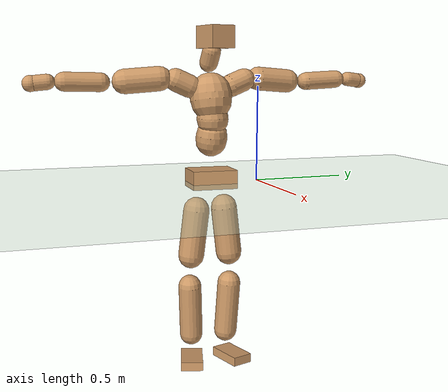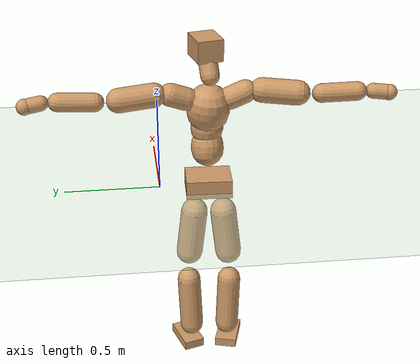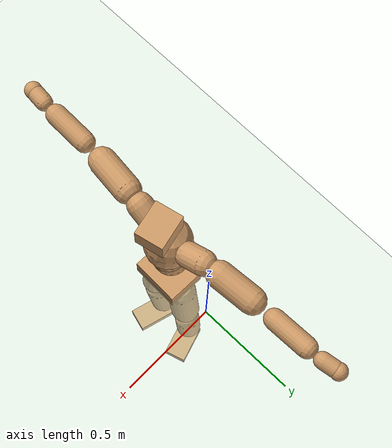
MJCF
<mujoco model="humanoid">
  <compiler coordinate="local" angle="radian"/>
  <default>
    <joint damping="0.0" armature="0.01" stiffness="0.0" limited="true"/>
    <geom conaffinity="1" condim="3" contype="7" margin="0.001" rgba="0.8 0.6 .4 1"/>
  </default>
  <asset>
    <texture type="skybox" builtin="gradient" rgb1=".4 .5 .6" rgb2="0 0 0" width="100" height="100"/>
    <texture builtin="flat" height="1278" mark="cross" markrgb="1 1 1" name="texgeom" random="0.01" rgb1="0.8 0.6 0.4" rgb2="0.8 0.6 0.4" type="cube" width="127"/>
    <texture builtin="checker" height="100" name="texplane" rgb1="0 0 0" rgb2="0.8 0.8 0.8" type="2d" width="100"/>
    <material name="MatPlane" reflectance="0.5" shininess="1" specular="1" texrepeat="60 60" texture="texplane"/>
    <material name="geom" texture="texgeom" texuniform="true"/>
  </asset>
  <worldbody>
    <light cutoff="100" diffuse="1 1 1" dir="-0 0 -1.3" directional="true" exponent="1" pos="0 0 1.3" specular=".1 .1 .1"/>
    <geom conaffinity="1" condim="3" name="floor" pos="0 0 0" rgba="0.8 0.9 0.8 1" size="100 100 .2" type="plane" material="MatPlane"/>
    <body name="Pelvis" pos="-0.0003 -0.2573 0.0283">
      <freejoint name="Pelvis"/>
      <geom type="box" contype="1" conaffinity="1" density="500" pos="-0.0137 0.0004 -0.0091" size="0.0917 0.1194 0.0488" quat="0.9999 0.0000 0.0000 -0.0162" name="Pelvis"/>
      <body name="L_Hip" pos="-0.0228 0.0673 -0.0892">
        <joint name="L_Hip_x" type="hinge" pos="0 0 0" axis="1 0 0" stiffness="800" damping="80" armature="0.02" range="-180.0000 180.0000"/>
        <joint name="L_Hip_y" type="hinge" pos="0 0 0" axis="0 1 0" stiffness="800" damping="80" armature="0.02" range="-180.0000 180.0000"/>
        <joint name="L_Hip_z" type="hinge" pos="0 0 0" axis="0 0 1" stiffness="800" damping="80" armature="0.02" range="-180.0000 180.0000"/>
        <geom type="capsule" contype="1" conaffinity="1" density="500" fromto="0.0007 0.0094 -0.0834 0.0028 0.0376 -0.3334" size="0.0701" name="L_Hip"/>
        <body name="L_Knee" pos="0.0034 0.047 -0.4168">
          <joint name="L_Knee_x" type="hinge" pos="0 0 0" axis="1 0 0" stiffness="800" damping="80" armature="0.02" range="-180.0000 180.0000"/>
          <joint name="L_Knee_y" type="hinge" pos="0 0 0" axis="0 1 0" stiffness="800" damping="80" armature="0.02" range="-180.0000 180.0000"/>
          <joint name="L_Knee_z" type="hinge" pos="0 0 0" axis="0 0 1" stiffness="800" damping="80" armature="0.02" range="-180.0000 180.0000"/>
          <geom type="capsule" contype="1" conaffinity="1" density="500" fromto="-0.0085 -0.0036 -0.0947 -0.0338 -0.0143 -0.3786" size="0.0627" name="L_Knee"/>
          <body name="L_Ankle" pos="-0.0423 -0.0179 -0.4733">
            <joint name="L_Ankle_x" type="hinge" pos="0 0 0" axis="1 0 0" stiffness="800" damping="80" armature="0.02" range="-180.0000 180.0000"/>
            <joint name="L_Ankle_y" type="hinge" pos="0 0 0" axis="0 1 0" stiffness="800" damping="80" armature="0.02" range="-180.0000 180.0000"/>
            <joint name="L_Ankle_z" type="hinge" pos="0 0 0" axis="0 0 1" stiffness="800" damping="80" armature="0.02" range="-180.0000 180.0000"/>
            <geom type="box" contype="1" conaffinity="1" density="500" pos="0.0682 0.0211 -0.0335" size="0.1001 0.0562 0.0242" quat="0.9887 0.0000 0.0000 0.1498" name="L_Ankle"/>
            <body name="L_Toe" pos="0.1364 0.0423 -0.0669">
              <joint name="L_Toe_x" type="hinge" pos="0 0 0" axis="1 0 0" stiffness="500" damping="50" armature="0.02" range="-180.0000 180.0000"/>
              <joint name="L_Toe_y" type="hinge" pos="0 0 0" axis="0 1 0" stiffness="500" damping="50" armature="0.02" range="-180.0000 180.0000"/>
              <joint name="L_Toe_z" type="hinge" pos="0 0 0" axis="0 0 1" stiffness="500" damping="50" armature="0.02" range="-180.0000 180.0000"/>
              <geom type="box" contype="1" conaffinity="1" density="500" pos="0.0000 0.0000 0.0328" size="0.0012 0.0028 0.0012" quat="0.9880 0.0000 0.0000 0.1543" name="L_Toe"/>
            </body>
          </body>
        </body>
      </body>
      <body name="R_Hip" pos="-0.0199 -0.0692 -0.0966">
        <joint name="R_Hip_x" type="hinge" pos="0 0 0" axis="1 0 0" stiffness="800" damping="80" armature="0.02" range="-180.0000 180.0000"/>
        <joint name="R_Hip_y" type="hinge" pos="0 0 0" axis="0 1 0" stiffness="800" damping="80" armature="0.02" range="-180.0000 180.0000"/>
        <joint name="R_Hip_z" type="hinge" pos="0 0 0" axis="0 0 1" stiffness="800" damping="80" armature="0.02" range="-180.0000 180.0000"/>
        <geom type="capsule" contype="1" conaffinity="1" density="500" fromto="-0.0020 -0.0095 -0.0833 -0.0080 -0.0381 -0.3330" size="0.0695" name="R_Hip"/>
        <body name="R_Knee" pos="-0.01 -0.0476 -0.4163">
          <joint name="R_Knee_x" type="hinge" pos="0 0 0" axis="1 0 0" stiffness="800" damping="80" armature="0.02" range="-180.0000 180.0000"/>
          <joint name="R_Knee_y" type="hinge" pos="0 0 0" axis="0 1 0" stiffness="800" damping="80" armature="0.02" range="-180.0000 180.0000"/>
          <joint name="R_Knee_z" type="hinge" pos="0 0 0" axis="0 0 1" stiffness="800" damping="80" armature="0.02" range="-180.0000 180.0000"/>
          <geom type="capsule" contype="1" conaffinity="1" density="500" fromto="-0.0078 0.0045 -0.0933 -0.0311 0.0180 -0.3733" size="0.0625" name="R_Knee"/>
          <body name="R_Ankle" pos="-0.0389 0.0225 -0.4667">
            <joint name="R_Ankle_x" type="hinge" pos="0 0 0" axis="1 0 0" stiffness="800" damping="80" armature="0.02" range="-180.0000 180.0000"/>
            <joint name="R_Ankle_y" type="hinge" pos="0 0 0" axis="0 1 0" stiffness="800" damping="80" armature="0.02" range="-180.0000 180.0000"/>
            <joint name="R_Ankle_z" type="hinge" pos="0 0 0" axis="0 0 1" stiffness="800" damping="80" armature="0.02" range="-180.0000 180.0000"/>
            <geom type="box" contype="1" conaffinity="1" density="500" pos="0.0731 -0.0207 -0.0345" size="0.1012 0.0585 0.024" quat="0.9905 0.0000 0.0000 -0.1373" name="R_Ankle"/>
            <body name="R_Toe" pos="0.1463 -0.0413 -0.069">
              <joint name="R_Toe_x" type="hinge" pos="0 0 0" axis="1 0 0" stiffness="500" damping="50" armature="0.02" range="-180.0000 180.0000"/>
              <joint name="R_Toe_y" type="hinge" pos="0 0 0" axis="0 1 0" stiffness="500" damping="50" armature="0.02" range="-180.0000 180.0000"/>
              <joint name="R_Toe_z" type="hinge" pos="0 0 0" axis="0 0 1" stiffness="500" damping="50" armature="0.02" range="-180.0000 180.0000"/>
              <geom type="box" contype="1" conaffinity="1" density="500" pos="0.0000 0.0000 0.0349" size="0.0012 0.0028 0.0012" quat="0.9916 0.0000 0.0000 -0.1293" name="R_Toe"/>
            </body>
          </body>
        </body>
      </body>
      <body name="Torso" pos="-0.0396 0.0046 0.1314">
        <joint name="Torso_x" type="hinge" pos="0 0 0" axis="1 0 0" stiffness="1000" damping="100" armature="0.02" range="-180.0000 180.0000"/>
        <joint name="Torso_y" type="hinge" pos="0 0 0" axis="0 1 0" stiffness="1000" damping="100" armature="0.02" range="-180.0000 180.0000"/>
        <joint name="Torso_z" type="hinge" pos="0 0 0" axis="0 0 1" stiffness="1000" damping="100" armature="0.02" range="-180.0000 180.0000"/>
        <geom type="capsule" contype="1" conaffinity="1" density="500" fromto="0.0182 0.0022 0.0873 0.0122 0.0015 0.0582" size="0.0831" name="Torso"/>
        <body name="Spine" pos="0.0304 0.0037 0.1455">
          <joint name="Spine_x" type="hinge" pos="0 0 0" axis="1 0 0" stiffness="1000" damping="100" armature="0.02" range="-180.0000 180.0000"/>
          <joint name="Spine_y" type="hinge" pos="0 0 0" axis="0 1 0" stiffness="1000" damping="100" armature="0.02" range="-180.0000 180.0000"/>
          <joint name="Spine_z" type="hinge" pos="0 0 0" axis="0 0 1" stiffness="1000" damping="100" armature="0.02" range="-180.0000 180.0000"/>
          <geom type="capsule" contype="1" conaffinity="1" density="500" fromto="0.0028 -0.0020 0.0364 0.0019 -0.0014 0.0243" size="0.0834" name="Spine"/>
          <body name="Chest" pos="0.0046 -0.0034 0.0607">
            <joint name="Chest_x" type="hinge" pos="0 0 0" axis="1 0 0" stiffness="1000" damping="100" armature="0.02" range="-180.0000 180.0000"/>
            <joint name="Chest_y" type="hinge" pos="0 0 0" axis="0 1 0" stiffness="1000" damping="100" armature="0.02" range="-180.0000 180.0000"/>
            <joint name="Chest_z" type="hinge" pos="0 0 0" axis="0 0 1" stiffness="1000" damping="100" armature="0.02" range="-180.0000 180.0000"/>
            <geom type="capsule" contype="1" conaffinity="1" density="500" fromto="-0.0147 -0.0050 0.0980 -0.0098 -0.0033 0.0653" size="0.1104" name="Chest"/>
            <body name="Neck" pos="-0.0355 -0.0143 0.2378">
              <joint name="Neck_x" type="hinge" pos="0 0 0" axis="1 0 0" stiffness="500" damping="50" armature="0.02" range="-180.0000 180.0000"/>
              <joint name="Neck_y" type="hinge" pos="0 0 0" axis="0 1 0" stiffness="500" damping="50" armature="0.02" range="-180.0000 180.0000"/>
              <joint name="Neck_z" type="hinge" pos="0 0 0" axis="0 0 1" stiffness="500" damping="50" armature="0.02" range="-180.0000 180.0000"/>
              <geom type="capsule" contype="1" conaffinity="1" density="500" fromto="0.0103 0.0020 0.0196 0.0413 0.0081 0.0783" size="0.0484" name="Neck"/>
              <body name="Head" pos="0.0517 0.0102 0.0978">
                <joint name="Head_x" type="hinge" pos="0 0 0" axis="1 0 0" stiffness="500" damping="50" armature="0.02" range="-180.0000 180.0000"/>
                <joint name="Head_y" type="hinge" pos="0 0 0" axis="0 1 0" stiffness="500" damping="50" armature="0.02" range="-180.0000 180.0000"/>
                <joint name="Head_z" type="hinge" pos="0 0 0" axis="0 0 1" stiffness="500" damping="50" armature="0.02" range="-180.0000 180.0000"/>
                <geom type="box" contype="1" conaffinity="1" density="500" pos="0.0268 0.0061 0.0499" size="0.0817 0.0666 0.0567" quat="0.9938 0.0000 0.0000 0.1111" name="Head"/>
              </body>
            </body>
            <body name="L_Thorax" pos="-0.0157 0.0793 0.1272">
              <joint name="L_Thorax_x" type="hinge" pos="0 0 0" axis="1 0 0" stiffness="500" damping="50" armature="0.02" range="-180.0000 180.0000"/>
              <joint name="L_Thorax_y" type="hinge" pos="0 0 0" axis="0 1 0" stiffness="500" damping="50" armature="0.02" range="-180.0000 180.0000"/>
              <joint name="L_Thorax_z" type="hinge" pos="0 0 0" axis="0 0 1" stiffness="500" damping="50" armature="0.02" range="-180.0000 180.0000"/>
              <geom type="capsule" contype="1" conaffinity="1" density="500" fromto="-0.0039 0.0269 0.0105 -0.0157 0.1075 0.0420" size="0.0593" name="L_Thorax"/>
              <body name="L_Shoulder" pos="-0.0197 0.1344 0.0525">
                <joint name="L_Shoulder_x" type="hinge" pos="0 0 0" axis="1 0 0" stiffness="500" damping="50" armature="0.02" range="-720.0000 720.0000"/>
                <joint name="L_Shoulder_y" type="hinge" pos="0 0 0" axis="0 1 0" stiffness="500" damping="50" armature="0.02" range="-720.0000 720.0000"/>
                <joint name="L_Shoulder_z" type="hinge" pos="0 0 0" axis="0 0 1" stiffness="500" damping="50" armature="0.02" range="-720.0000 720.0000"/>
                <geom type="capsule" contype="1" conaffinity="1" density="500" fromto="-0.0053 0.0579 -0.0046 -0.0214 0.2316 -0.0183" size="0.0625" name="L_Shoulder"/>
                <body name="L_Elbow" pos="-0.0267 0.2896 -0.0229">
                  <joint name="L_Elbow_x" type="hinge" pos="0 0 0" axis="1 0 0" stiffness="500" damping="50" armature="0.02" range="-720.0000 720.0000"/>
                  <joint name="L_Elbow_y" type="hinge" pos="0 0 0" axis="0 1 0" stiffness="500" damping="50" armature="0.02" range="-720.0000 720.0000"/>
                  <joint name="L_Elbow_z" type="hinge" pos="0 0 0" axis="0 0 1" stiffness="500" damping="50" armature="0.02" range="-720.0000 720.0000"/>
                  <geom type="capsule" contype="1" conaffinity="1" density="500" fromto="-0.0009 0.0601 0.0032 -0.0037 0.2405 0.0129" size="0.0475" name="L_Elbow"/>
                  <body name="L_Wrist" pos="-0.0046 0.3007 0.0162">
                    <joint name="L_Wrist_x" type="hinge" pos="0 0 0" axis="1 0 0" stiffness="300" damping="30" armature="0.02" range="-180.0000 180.0000"/>
                    <joint name="L_Wrist_y" type="hinge" pos="0 0 0" axis="0 1 0" stiffness="300" damping="30" armature="0.02" range="-180.0000 180.0000"/>
                    <joint name="L_Wrist_z" type="hinge" pos="0 0 0" axis="0 0 1" stiffness="300" damping="30" armature="0.02" range="-180.0000 180.0000"/>
                    <geom type="capsule" contype="1" conaffinity="1" density="500" fromto="-0.0036 0.0198 -0.0024 -0.0145 0.0791 -0.0097" size="0.0386" name="L_Wrist"/>
                    <body name="L_Hand" pos="-0.0181 0.0989 -0.0122">
                      <joint name="L_Hand_x" type="hinge" pos="0 0 0" axis="1 0 0" stiffness="300" damping="30" armature="0.02" range="-180.0000 180.0000"/>
                      <joint name="L_Hand_y" type="hinge" pos="0 0 0" axis="0 1 0" stiffness="300" damping="30" armature="0.02" range="-180.0000 180.0000"/>
                      <joint name="L_Hand_z" type="hinge" pos="0 0 0" axis="0 0 1" stiffness="300" damping="30" armature="0.02" range="-180.0000 180.0000"/>
                      <geom type="sphere" contype="1" conaffinity="1" density="500" size="0.0405" pos="0.0000 0.0000 0.0000" name="L_Hand"/>
                    </body>
                  </body>
                </body>
              </body>
            </body>
            <body name="R_Thorax" pos="-0.0222 -0.0898 0.125">
              <joint name="R_Thorax_x" type="hinge" pos="0 0 0" axis="1 0 0" stiffness="500" damping="50" armature="0.02" range="-180.0000 180.0000"/>
              <joint name="R_Thorax_y" type="hinge" pos="0 0 0" axis="0 1 0" stiffness="500" damping="50" armature="0.02" range="-180.0000 180.0000"/>
              <joint name="R_Thorax_z" type="hinge" pos="0 0 0" axis="0 0 1" stiffness="500" damping="50" armature="0.02" range="-180.0000 180.0000"/>
              <geom type="capsule" contype="1" conaffinity="1" density="500" fromto="-0.0015 -0.0250 0.0113 -0.0062 -0.1001 0.0451" size="0.0595" name="R_Thorax"/>
              <body name="R_Shoulder" pos="-0.0077 -0.1251 0.0564">
                <joint name="R_Shoulder_x" type="hinge" pos="0 0 0" axis="1 0 0" stiffness="500" damping="50" armature="0.02" range="-720.0000 720.0000"/>
                <joint name="R_Shoulder_y" type="hinge" pos="0 0 0" axis="0 1 0" stiffness="500" damping="50" armature="0.02" range="-720.0000 720.0000"/>
                <joint name="R_Shoulder_z" type="hinge" pos="0 0 0" axis="0 0 1" stiffness="500" damping="50" armature="0.02" range="-720.0000 720.0000"/>
                <geom type="capsule" contype="1" conaffinity="1" density="500" fromto="-0.0077 -0.0593 -0.0047 -0.0307 -0.2370 -0.0187" size="0.0639" name="R_Shoulder"/>
                <body name="R_Elbow" pos="-0.0384 -0.2963 -0.0234">
                  <joint name="R_Elbow_x" type="hinge" pos="0 0 0" axis="1 0 0" stiffness="500" damping="50" armature="0.02" range="-720.0000 720.0000"/>
                  <joint name="R_Elbow_y" type="hinge" pos="0 0 0" axis="0 1 0" stiffness="500" damping="50" armature="0.02" range="-720.0000 720.0000"/>
                  <joint name="R_Elbow_z" type="hinge" pos="0 0 0" axis="0 0 1" stiffness="500" damping="50" armature="0.02" range="-720.0000 720.0000"/>
                  <geom type="capsule" contype="1" conaffinity="1" density="500" fromto="-0.0010 -0.0609 0.0013 -0.0041 -0.2435 0.0052" size="0.0484" name="R_Elbow"/>
                  <body name="R_Wrist" pos="-0.0051 -0.3044 0.0065">
                    <joint name="R_Wrist_x" type="hinge" pos="0 0 0" axis="1 0 0" stiffness="300" damping="30" armature="0.02" range="-180.0000 180.0000"/>
                    <joint name="R_Wrist_y" type="hinge" pos="0 0 0" axis="0 1 0" stiffness="300" damping="30" armature="0.02" range="-180.0000 180.0000"/>
                    <joint name="R_Wrist_z" type="hinge" pos="0 0 0" axis="0 0 1" stiffness="300" damping="30" armature="0.02" range="-180.0000 180.0000"/>
                    <geom type="capsule" contype="1" conaffinity="1" density="500" fromto="-0.0023 -0.0203 -0.0020 -0.0092 -0.0810 -0.0080" size="0.0395" name="R_Wrist"/>
                    <body name="R_Hand" pos="-0.0116 -0.1013 -0.01">
                      <joint name="R_Hand_x" type="hinge" pos="0 0 0" axis="1 0 0" stiffness="300" damping="30" armature="0.02" range="-180.0000 180.0000"/>
                      <joint name="R_Hand_y" type="hinge" pos="0 0 0" axis="0 1 0" stiffness="300" damping="30" armature="0.02" range="-180.0000 180.0000"/>
                      <joint name="R_Hand_z" type="hinge" pos="0 0 0" axis="0 0 1" stiffness="300" damping="30" armature="0.02" range="-180.0000 180.0000"/>
                      <geom type="sphere" contype="1" conaffinity="1" density="500" size="0.0411" pos="0.0000 0.0000 0.0000" name="R_Hand"/>
                    </body>
                  </body>
                </body>
              </body>
            </body>
          </body>
        </body>
      </body>
    </body>
  </worldbody>
  <actuator>
    <motor name="L_Hip_x" joint="L_Hip_x" gear="500"/>
    <motor name="L_Hip_y" joint="L_Hip_y" gear="500"/>
    <motor name="L_Hip_z" joint="L_Hip_z" gear="500"/>
    <motor name="L_Knee_x" joint="L_Knee_x" gear="500"/>
    <motor name="L_Knee_y" joint="L_Knee_y" gear="500"/>
    <motor name="L_Knee_z" joint="L_Knee_z" gear="500"/>
    <motor name="L_Ankle_x" joint="L_Ankle_x" gear="500"/>
    <motor name="L_Ankle_y" joint="L_Ankle_y" gear="500"/>
    <motor name="L_Ankle_z" joint="L_Ankle_z" gear="500"/>
    <motor name="L_Toe_x" joint="L_Toe_x" gear="500"/>
    <motor name="L_Toe_y" joint="L_Toe_y" gear="500"/>
    <motor name="L_Toe_z" joint="L_Toe_z" gear="500"/>
    <motor name="R_Hip_x" joint="R_Hip_x" gear="500"/>
    <motor name="R_Hip_y" joint="R_Hip_y" gear="500"/>
    <motor name="R_Hip_z" joint="R_Hip_z" gear="500"/>
    <motor name="R_Knee_x" joint="R_Knee_x" gear="500"/>
    <motor name="R_Knee_y" joint="R_Knee_y" gear="500"/>
    <motor name="R_Knee_z" joint="R_Knee_z" gear="500"/>
    <motor name="R_Ankle_x" joint="R_Ankle_x" gear="500"/>
    <motor name="R_Ankle_y" joint="R_Ankle_y" gear="500"/>
    <motor name="R_Ankle_z" joint="R_Ankle_z" gear="500"/>
    <motor name="R_Toe_x" joint="R_Toe_x" gear="500"/>
    <motor name="R_Toe_y" joint="R_Toe_y" gear="500"/>
    <motor name="R_Toe_z" joint="R_Toe_z" gear="500"/>
    <motor name="Torso_x" joint="Torso_x" gear="500"/>
    <motor name="Torso_y" joint="Torso_y" gear="500"/>
    <motor name="Torso_z" joint="Torso_z" gear="500"/>
    <motor name="Spine_x" joint="Spine_x" gear="500"/>
    <motor name="Spine_y" joint="Spine_y" gear="500"/>
    <motor name="Spine_z" joint="Spine_z" gear="500"/>
    <motor name="Chest_x" joint="Chest_x" gear="500"/>
    <motor name="Chest_y" joint="Chest_y" gear="500"/>
    <motor name="Chest_z" joint="Chest_z" gear="500"/>
    <motor name="Neck_x" joint="Neck_x" gear="500"/>
    <motor name="Neck_y" joint="Neck_y" gear="500"/>
    <motor name="Neck_z" joint="Neck_z" gear="500"/>
    <motor name="Head_x" joint="Head_x" gear="500"/>
    <motor name="Head_y" joint="Head_y" gear="500"/>
    <motor name="Head_z" joint="Head_z" gear="500"/>
    <motor name="L_Thorax_x" joint="L_Thorax_x" gear="500"/>
    <motor name="L_Thorax_y" joint="L_Thorax_y" gear="500"/>
    <motor name="L_Thorax_z" joint="L_Thorax_z" gear="500"/>
    <motor name="L_Shoulder_x" joint="L_Shoulder_x" gear="500"/>
    <motor name="L_Shoulder_y" joint="L_Shoulder_y" gear="500"/>
    <motor name="L_Shoulder_z" joint="L_Shoulder_z" gear="500"/>
    <motor name="L_Elbow_x" joint="L_Elbow_x" gear="500"/>
    <motor name="L_Elbow_y" joint="L_Elbow_y" gear="500"/>
    <motor name="L_Elbow_z" joint="L_Elbow_z" gear="500"/>
    <motor name="L_Wrist_x" joint="L_Wrist_x" gear="500"/>
    <motor name="L_Wrist_y" joint="L_Wrist_y" gear="500"/>
    <motor name="L_Wrist_z" joint="L_Wrist_z" gear="500"/>
    <motor name="L_Hand_x" joint="L_Hand_x" gear="500"/>
    <motor name="L_Hand_y" joint="L_Hand_y" gear="500"/>
    <motor name="L_Hand_z" joint="L_Hand_z" gear="500"/>
    <motor name="R_Thorax_x" joint="R_Thorax_x" gear="500"/>
    <motor name="R_Thorax_y" joint="R_Thorax_y" gear="500"/>
    <motor name="R_Thorax_z" joint="R_Thorax_z" gear="500"/>
    <motor name="R_Shoulder_x" joint="R_Shoulder_x" gear="500"/>
    <motor name="R_Shoulder_y" joint="R_Shoulder_y" gear="500"/>
    <motor name="R_Shoulder_z" joint="R_Shoulder_z" gear="500"/>
    <motor name="R_Elbow_x" joint="R_Elbow_x" gear="500"/>
    <motor name="R_Elbow_y" joint="R_Elbow_y" gear="500"/>
    <motor name="R_Elbow_z" joint="R_Elbow_z" gear="500"/>
    <motor name="R_Wrist_x" joint="R_Wrist_x" gear="500"/>
    <motor name="R_Wrist_y" joint="R_Wrist_y" gear="500"/>
    <motor name="R_Wrist_z" joint="R_Wrist_z" gear="500"/>
    <motor name="R_Hand_x" joint="R_Hand_x" gear="500"/>
    <motor name="R_Hand_y" joint="R_Hand_y" gear="500"/>
    <motor name="R_Hand_z" joint="R_Hand_z" gear="500"/>
  </actuator>
  <contact>
    <exclude body1="Torso" body2="Chest"/>
    <exclude body1="Head" body2="Chest"/>
    <exclude body1="R_Knee" body2="R_Toe"/>
    <exclude body1="R_Knee" body2="L_Ankle"/>
    <exclude body1="R_Knee" body2="L_Toe"/>
    <exclude body1="L_Knee" body2="L_Toe"/>
    <exclude body1="L_Knee" body2="R_Ankle"/>
    <exclude body1="L_Knee" body2="R_Toe"/>
    <exclude body1="L_Shoulder" body2="Chest"/>
    <exclude body1="R_Shoulder" body2="Chest"/>
  </contact>
  <sensor/>
  <size njmax="700" nconmax="700"/>
</mujoco>
